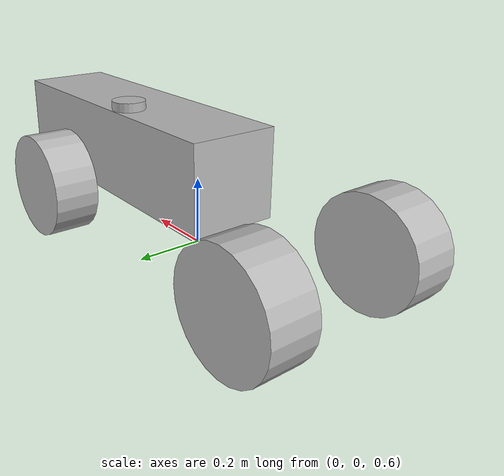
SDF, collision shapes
<?xml version="1.0"?>
<sdf version="1.6">

    <model name="hunter_v2">
      <pose>0.0 0.0 0.7 0.0 0.0 0.0</pose>

      <link name="base_link">

        <inertial>
          <pose>0.325 0.0 0.27 0.0 0.0 0.0</pose>
          <inertia>
            <ixx>2.288641</ixx>
            <ixy>0</ixy>
            <ixz>0</ixz>
            <iyy>5.103976</iyy>
            <iyz>0</iyz>
            <izz>3.431465</izz>
          </inertia>
          <mass>40.0</mass>
        </inertial>

        <collision name="base_link_collision">
          <pose>0.325 0.0 0.135 0.0 0.0 0.0</pose>
          <geometry>
            <box>
              <size>0.98 0.27 0.27</size>
            </box>
          </geometry>
        </collision>

        <visual name="base_link_visual">
          <pose>0.325 0.0 0.135 0.0 0.0 0.0</pose>
          <geometry>
            <box>
              <size>0.98 0.27 0.27</size>
            </box>
          </geometry>
        </visual>

      </link>

      <!--rear left wheel-->
      <link name="rear_left_wheel_link">

        <inertial>
          <pose>0 0 0 0 0 0</pose>
          <inertia>
            <ixx>0.7171</ixx>
            <ixy>0</ixy>
            <ixz>0</ixz>
            <iyy>0.1361</iyy>
            <iyz>0</iyz>
            <izz>0.7171</izz>
          </inertia>
          <mass>3.0</mass>
        </inertial>

        <collision name="rear_left_wheel_collision">
          <pose>-0.4775 0.2325 0 -1.5707 0 0</pose>
          <geometry>
            <cylinder>
              <radius>0.165</radius>
              <length>0.140</length>
            </cylinder>
          </geometry>
        </collision>

        <visual name="rear_left_wheel_visual">
          <pose>-0.4775 0.2325 0 -1.5707 0 0</pose>
          <geometry>
            <cylinder>
              <radius>0.165</radius>
              <length>0.140</length>
            </cylinder>
          </geometry>
        </visual>
      </link>

      <joint name="rear_left_wheel_joint" type="revolute">
        <parent>base_link</parent>
        <child>rear_left_wheel_link</child>
        <pose>-0.4775 0.2325 0 0 0 0</pose>
        <axis>
         <xyz>0 1 0</xyz>
        </axis>
      </joint>

      <!--rear right wheel-->
      <link name="rear_right_wheel_link">

        <inertial>
          <pose>0 0 0 0 0 0</pose>
          <inertia>
            <ixx>0.7171</ixx>
            <ixy>0</ixy>
            <ixz>0</ixz>
            <iyy>0.1361</iyy>
            <iyz>0</iyz>
            <izz>0.7171</izz>
          </inertia>
          <mass>3.0</mass>
        </inertial>

        <collision name="rear_right_wheel_collision">
          <pose>-0.4775 -0.2325 0 -1.5707 0 0</pose>
          <geometry>
            <cylinder>
              <radius>0.165</radius>
              <length>0.140</length>
            </cylinder>
          </geometry>
        </collision>

        <visual name="rear_right_wheel_visual">
          <pose>-0.4775 -0.2325 0 -1.5707 0 0</pose>
          <geometry>
            <cylinder>
              <radius>0.165</radius>
              <length>0.140</length>
            </cylinder>
          </geometry>
        </visual>
      </link>

      <joint name="rear_right_wheel_joint" type="revolute">
        <parent>base_link</parent>
        <child>rear_right_wheel_link</child>
        <pose>-0.4775 -0.2325 0 0 0 0</pose>
        <axis>
         <xyz>0 1 0</xyz>
        </axis>
      </joint>

      <!--front right-->
      <joint name="front_right_steer_joint" type="revolute">
        <parent>base_link</parent>
        <child>front_right_steer_link</child>
        <pose>0.4775 -0.2325 0 0 0 0</pose>
        <axis>
         <xyz>0 0 1</xyz>
         <limit>
           <lower>-0.6</lower>
           <upper>0.6</upper>
         </limit>
        </axis>
      </joint>

      <link name="front_right_steer_link"/>

      <joint name="front_right_wheel_joint" type="revolute">
        <parent>front_right_steer_link</parent>
        <child>front_right_wheel_link</child>
        <pose>0.4775 -0.2325 0 0 0 0</pose>
        <axis>
         <xyz>0 1 0</xyz>
        </axis>
      </joint>

      <link name="front_right_wheel_link">

        <inertial>
          <pose>0 0 0 0 0 0</pose>
          <inertia>
            <ixx>0.007171</ixx>
            <ixy>0</ixy>
            <ixz>0</ixz>
            <iyy>0.001361</iyy>
            <iyz>0</iyz>
            <izz>0.007171</izz>
          </inertia>
          <mass>0.1</mass>
        </inertial>

        <collision name="front_right_wheel_collision">
          <pose>0.4775 -0.2325 0 -1.5707 0 0</pose>
          <geometry>
            <cylinder>
              <radius>0.165</radius>
              <length>0.140</length>
            </cylinder>
          </geometry>
        </collision>

        <visual name="front_right_wheel_visual">
          <pose>0.4775 -0.2325 0 -1.5707 0 0</pose>
          <geometry>
            <cylinder>
              <radius>0.165</radius>
              <length>0.140</length>
            </cylinder>
          </geometry>
        </visual>
      </link>

      <!--front left-->
      <joint name="front_left_steer_joint" type="revolute">
        <parent>base_link</parent>
        <child>front_left_steer_link</child>
        <pose>0.4775 0.2325 0 0 0 0</pose>
        <axis>
         <xyz>0 0 1</xyz>
         <limit>
           <lower>-0.6</lower>
           <upper>0.6</upper>
         </limit>
        </axis>
      </joint>

      <link name="front_left_steer_link"/>

      <joint name="front_left_wheel_joint" type="revolute">
        <parent>front_left_steer_link</parent>
        <child>front_left_wheel_link</child>
        <pose>0.4775 0.2325 0 0 0 0</pose>
        <axis>
         <xyz>0 1 0</xyz>
        </axis>
      </joint>

      <link name="front_left_wheel_link">

        <inertial>
          <pose>0 0 0 0 0 0</pose>
          <inertia>
            <ixx>0.007171</ixx>
            <ixy>0</ixy>
            <ixz>0</ixz>
            <iyy>0.001361</iyy>
            <iyz>0</iyz>
            <izz>0.007171</izz>
          </inertia>
          <mass>0.1</mass>
        </inertial>

        <collision name="front_left_wheel_collision">
          <pose>0.4775 0.2325 0 -1.5707 0 0</pose>
          <geometry>
            <cylinder>
              <radius>0.165</radius>
              <length>0.140</length>
            </cylinder>
          </geometry>
        </collision>

        <visual name="front_left_wheel_visual">
          <pose>0.4775 0.2325 0 -1.5707 0 0</pose>
          <geometry>
            <cylinder>
              <radius>0.165</radius>
              <length>0.140</length>
            </cylinder>
          </geometry>
        </visual>
      </link>

      <!--sensor-->
      <joint name="scan_joint" type="fixed">
        <parent>base_link</parent>
        <child>base_scan</child>
        <pose>0.2388 0.08 0.270 0 0 0</pose>
      </joint>

      <link name="base_scan">
        <inertial>
          <pose>0.2388 0.08 0.270 0 0 0</pose>
          <inertia>
            <ixx>0.001</ixx>
            <ixy>0.000</ixy>
            <ixz>0.000</ixz>
            <iyy>0.001</iyy>
            <iyz>0.000</iyz>
            <izz>0.001</izz>
          </inertia>
          <mass>0.125</mass>
        </inertial>

        <collision name="lidar_sensor_collision">
          <pose>0.2388 0.08 0.270 0 0 0</pose>
          <geometry>
            <cylinder>
              <radius>0.0508</radius>
              <length>0.055</length>
            </cylinder>
          </geometry>
        </collision>

        <visual name="lidar_sensor_visual">
          <pose>0.2388 0.08 0.270 0 0 0</pose>
          <geometry>
            <mesh>
              <uri>model://turtlebot3_waffle/meshes/lds.dae</uri>
              <scale>0.001 0.001 0.001</scale>
            </mesh>
          </geometry>
        </visual>

        <!--sensor name="hls_lfcd_lds" type="ray"-->
        <sensor name="lidar_sensor" type="ray">
          <always_on>true</always_on>
          <visualize>true</visualize>
          <pose>0.2388 0.08 0.270 0 0 0</pose>
          <update_rate>5</update_rate>
          <ray>
            <scan>
              <horizontal>
                <samples>360</samples>
                <resolution>1.000000</resolution>
                <min_angle>0.000000</min_angle>
                <max_angle>6.280000</max_angle>
              </horizontal>
            </scan>
            <range>
              <min>0.20000</min>
              <max>30</max>
              <resolution>0.015000</resolution>
            </range>
            <noise>
              <type>gaussian</type>
              <mean>0.0</mean>
              <stddev>0.01</stddev>
            </noise>
          </ray>
          <plugin name="laserscan_realistic_plugin" filename="libgazebo_ros_ray_sensor.so">
            <ros>
                <remapping>~/out:=scan</remapping>
            </ros>
            <output_type>sensor_msgs/LaserScan</output_type>
            <frame_name>base_scan</frame_name>
          </plugin>
        </sensor>
      </link>

      <plugin name='ackermann_drive_plugin' filename='libgazebo_ros_ackermann_drive.so'>

        <ros>
          <remapping>distance:=distance_demo</remapping>
        </ros>

        <update_rate>100.0</update_rate>

        <!-- wheels -->
        <front_left_joint>front_left_wheel_joint</front_left_joint>
        <front_right_joint>front_left_wheel_joint</front_right_joint>
        <rear_left_joint>rear_left_wheel_joint</rear_left_joint>
        <rear_right_joint>rear_right_wheel_joint</rear_right_joint>
        <left_steering_joint>front_left_steer_joint</left_steering_joint>
        <right_steering_joint>front_right_steer_joint</right_steering_joint>

        <!-- Max absolute steer angle for tyre in radians-->
        <!-- Any cmd_vel angular z greater than this would be capped -->
        <max_steer>0.6458</max_steer>

        <!-- Max absolute steering angle of steering wheel -->
        <max_steering_angle>7.85</max_steering_angle>

        <!-- Max absolute linear speed in m/s -->
        <max_speed>20</max_speed>

        <!-- PID tuning -->
        <left_steering_pid_gain>180 0 30</left_steering_pid_gain>
        <left_steering_i_range>0 0</left_steering_i_range>
        <right_steering_pid_gain>180 0 30</right_steering_pid_gain>
        <right_steering_i_range>0 0</right_steering_i_range>
        <linear_velocity_pid_gain>1000 0 1</linear_velocity_pid_gain>
        <linear_velocity_i_range>0 0</linear_velocity_i_range>

        <!-- output -->
        <publish_odom>true</publish_odom>
        <publish_odom_tf>true</publish_odom_tf>
        <publish_wheel_tf>true</publish_wheel_tf>
        <publish_distance>true</publish_distance>

        <odometry_frame>odom</odometry_frame>
        <robot_base_frame>base_link</robot_base_frame>

        <odometry_source>2</odometry_source>

      </plugin>

    </model>

</sdf>
